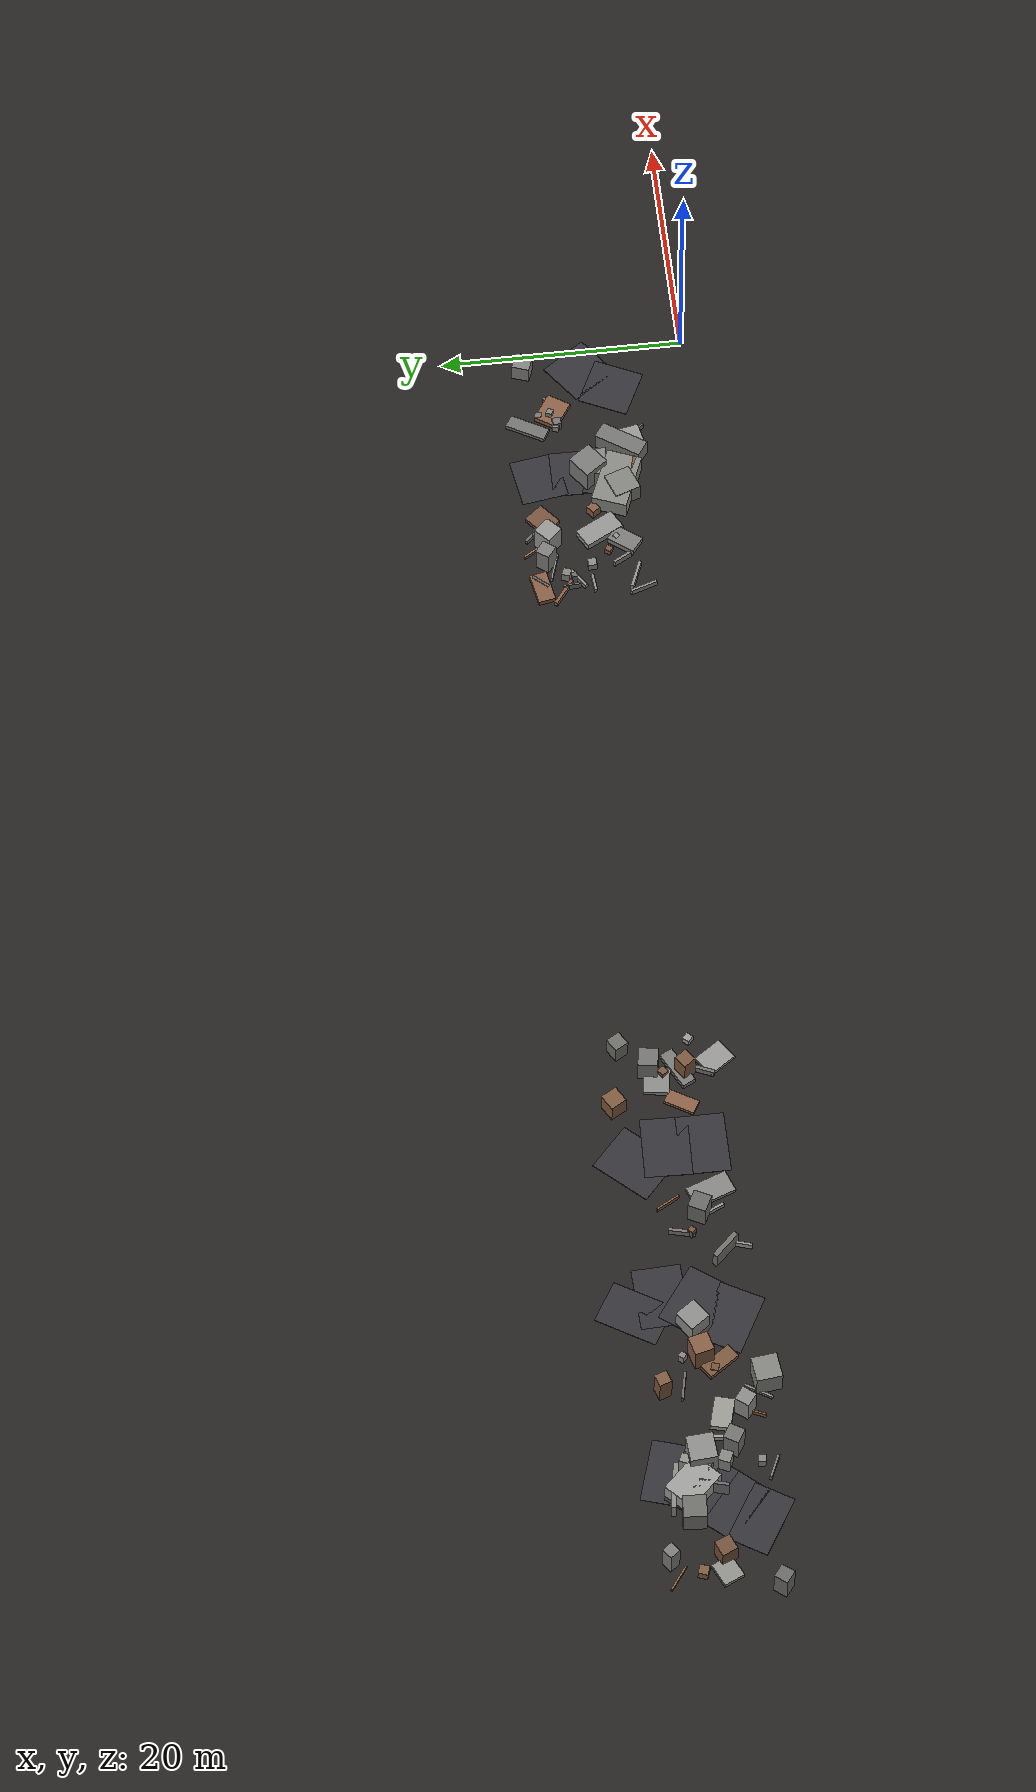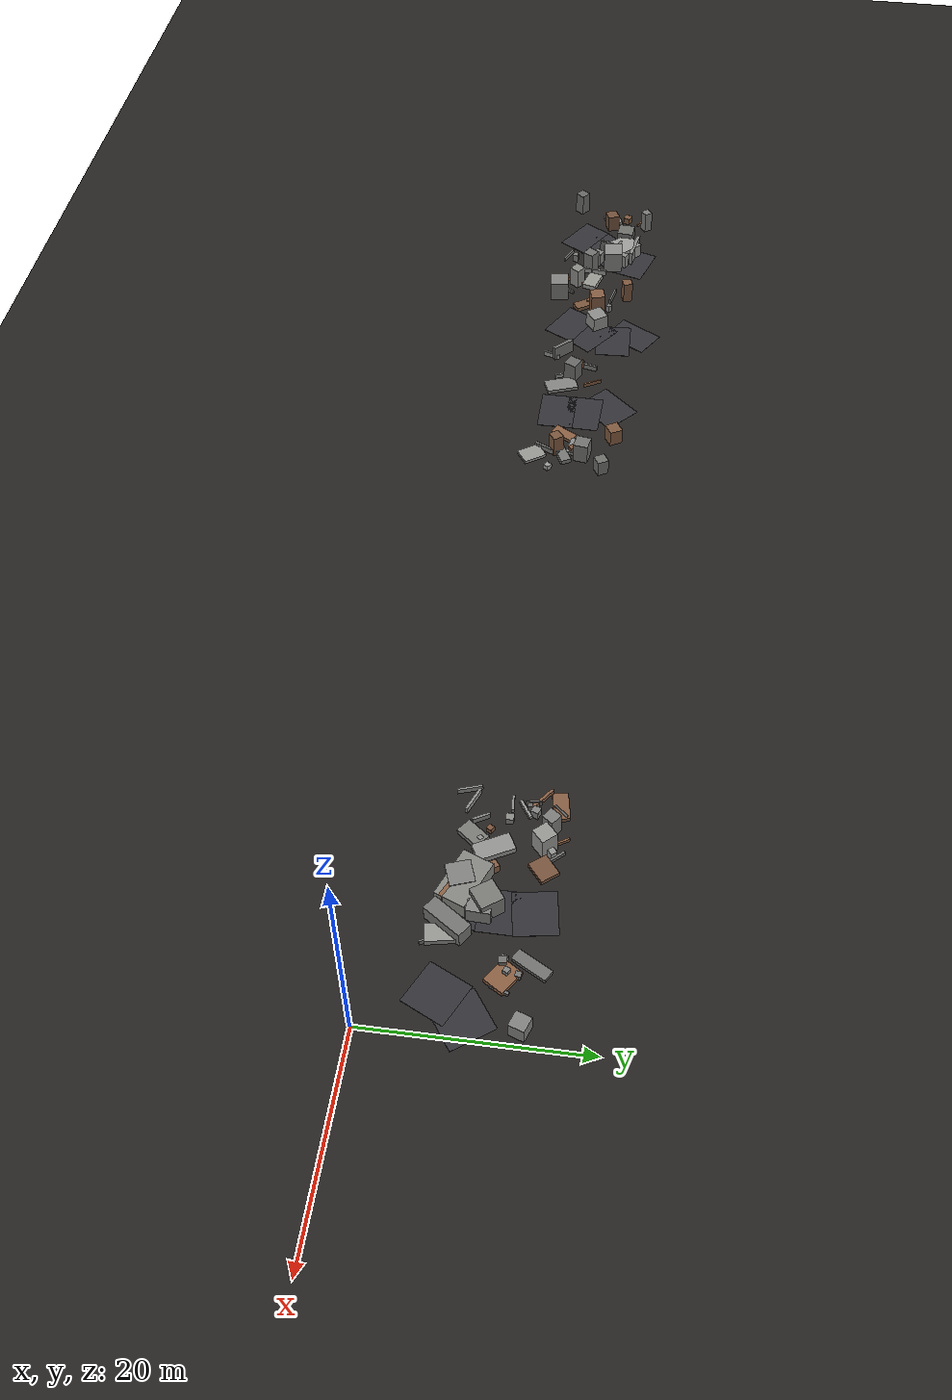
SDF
<sdf version="1.6">
 <world name="navitas_arena">
  <model name="ground_plane">
   <static>true</static>
   <link name="link">
    <collision name="collision">
     <geometry><plane><normal>0 0 1</normal><size>400 400</size></plane></geometry>
     <surface><friction><ode><mu>0.750</mu><mu2>0.750</mu2></ode></friction></surface>
    </collision>
    <visual name="visual">
     <cast_shadows>false</cast_shadows>
     <geometry><plane><normal>0 0 1</normal><size>400 400</size></plane></geometry>
     <material><ambient>0.150 0.140 0.130 1</ambient><diffuse>0.150 0.140 0.130 1</diffuse></material>
    </visual>
   </link>
  </model>
  <model name="road_kolay_1_14">
   <static>true</static>
   <pose>-107.877 7.036 0.040 0 0 1.019</pose>
   <link name="link">
    <collision name="col"><geometry><box><size>3.335 5.100 0.020</size></box></geometry></collision>
    <visual name="vis">
     <geometry><box><size>3.335 5.100 0.020</size></box></geometry>
     <material><ambient>0.20 0.20 0.22 1</ambient><diffuse>0.20 0.20 0.22 1</diffuse></material>
    </visual>
   </link>
  </model>
  <model name="road_kolay_1_15">
   <static>true</static>
   <pose>-106.329 9.124 0.040 0 0 0.858</pose>
   <link name="link">
    <collision name="col"><geometry><box><size>3.680 5.100 0.020</size></box></geometry></collision>
    <visual name="vis">
     <geometry><box><size>3.680 5.100 0.020</size></box></geometry>
     <material><ambient>0.20 0.20 0.22 1</ambient><diffuse>0.20 0.20 0.22 1</diffuse></material>
    </visual>
   </link>
  </model>
  <model name="road_kolay_1_16">
   <static>true</static>
   <pose>-104.605 11.153 0.040 0 0 0.876</pose>
   <link name="link">
    <collision name="col"><geometry><box><size>3.446 5.100 0.020</size></box></geometry></collision>
    <visual name="vis">
     <geometry><box><size>3.446 5.100 0.020</size></box></geometry>
     <material><ambient>0.20 0.20 0.22 1</ambient><diffuse>0.20 0.20 0.22 1</diffuse></material>
    </visual>
   </link>
  </model>
  <model name="road_kolay_1_17">
   <static>true</static>
   <pose>-103.387 13.427 0.040 0 0 1.270</pose>
   <link name="link">
    <collision name="col"><geometry><box><size>3.613 5.100 0.020</size></box></geometry></collision>
    <visual name="vis">
     <geometry><box><size>3.613 5.100 0.020</size></box></geometry>
     <material><ambient>0.20 0.20 0.22 1</ambient><diffuse>0.20 0.20 0.22 1</diffuse></material>
    </visual>
   </link>
  </model>
  <model name="road_kolay_2_10">
   <static>true</static>
   <pose>-90.799 7.213 0.040 0 0 1.069</pose>
   <link name="link">
    <collision name="col"><geometry><box><size>3.668 5.100 0.020</size></box></geometry></collision>
    <visual name="vis">
     <geometry><box><size>3.668 5.100 0.020</size></box></geometry>
     <material><ambient>0.20 0.20 0.22 1</ambient><diffuse>0.20 0.20 0.22 1</diffuse></material>
    </visual>
   </link>
  </model>
  <model name="road_kolay_2_11">
   <static>true</static>
   <pose>-89.248 9.639 0.040 0 0 0.940</pose>
   <link name="link">
    <collision name="col"><geometry><box><size>3.903 5.100 0.020</size></box></geometry></collision>
    <visual name="vis">
     <geometry><box><size>3.903 5.100 0.020</size></box></geometry>
     <material><ambient>0.20 0.20 0.22 1</ambient><diffuse>0.20 0.20 0.22 1</diffuse></material>
    </visual>
   </link>
  </model>
  <model name="road_kolay_2_12">
   <static>true</static>
   <pose>-88.425 12.317 0.040 0 0 1.613</pose>
   <link name="link">
    <collision name="col"><geometry><box><size>3.834 5.100 0.020</size></box></geometry></collision>
    <visual name="vis">
     <geometry><box><size>3.834 5.100 0.020</size></box></geometry>
     <material><ambient>0.20 0.20 0.22 1</ambient><diffuse>0.20 0.20 0.22 1</diffuse></material>
    </visual>
   </link>
  </model>
  <model name="road_kolay_2_13">
   <static>true</static>
   <pose>-89.631 14.469 0.040 0 0 2.601</pose>
   <link name="link">
    <collision name="col"><geometry><box><size>3.567 5.100 0.020</size></box></geometry></collision>
    <visual name="vis">
     <geometry><box><size>3.567 5.100 0.020</size></box></geometry>
     <material><ambient>0.20 0.20 0.22 1</ambient><diffuse>0.20 0.20 0.22 1</diffuse></material>
    </visual>
   </link>
  </model>
  <model name="road_kolay_3_14">
   <static>true</static>
   <pose>-75.554 7.460 0.040 0 0 1.570</pose>
   <link name="link">
    <collision name="col"><geometry><box><size>3.820 5.100 0.020</size></box></geometry></collision>
    <visual name="vis">
     <geometry><box><size>3.820 5.100 0.020</size></box></geometry>
     <material><ambient>0.20 0.20 0.22 1</ambient><diffuse>0.20 0.20 0.22 1</diffuse></material>
    </visual>
   </link>
  </model>
  <model name="road_kolay_3_15">
   <static>true</static>
   <pose>-75.510 10.340 0.040 0 0 1.541</pose>
   <link name="link">
    <collision name="col"><geometry><box><size>3.741 5.100 0.020</size></box></geometry></collision>
    <visual name="vis">
     <geometry><box><size>3.741 5.100 0.020</size></box></geometry>
     <material><ambient>0.20 0.20 0.22 1</ambient><diffuse>0.20 0.20 0.22 1</diffuse></material>
    </visual>
   </link>
  </model>
  <model name="road_kolay_3_16">
   <static>true</static>
   <pose>-76.684 12.872 0.040 0 0 2.401</pose>
   <link name="link">
    <collision name="col"><geometry><box><size>4.195 5.100 0.020</size></box></geometry></collision>
    <visual name="vis">
     <geometry><box><size>4.195 5.100 0.020</size></box></geometry>
     <material><ambient>0.20 0.20 0.22 1</ambient><diffuse>0.20 0.20 0.22 1</diffuse></material>
    </visual>
   </link>
  </model>
  <model name="blk_kolay_1_1_0">
   <static>true</static>
   <pose>-105.186 10.278 0.800 0 0 1.313</pose>
   <link name="link">
    <collision name="col"><geometry><box><size>2.316 0.255 1.600</size></box></geometry></collision>
    <visual name="vis">
     <geometry><box><size>2.316 0.255 1.600</size></box></geometry>
     <material><ambient>0.42 0.42 0.41 1</ambient><diffuse>0.42 0.42 0.41 1</diffuse></material>
    </visual>
   </link>
  </model>
  <model name="blk_kolay_1_1_1">
   <static>true</static>
   <pose>-102.954 12.226 0.800 0 0 1.133</pose>
   <link name="link">
    <collision name="col"><geometry><box><size>0.742 0.742 1.600</size></box></geometry></collision>
    <visual name="vis">
     <geometry><box><size>0.742 0.742 1.600</size></box></geometry>
     <material><ambient>0.56 0.56 0.55 1</ambient><diffuse>0.56 0.56 0.55 1</diffuse></material>
    </visual>
   </link>
  </model>
  <model name="blk_kolay_1_1_2">
   <static>true</static>
   <pose>-104.341 10.915 0.800 0 0 2.548</pose>
   <link name="link">
    <collision name="col"><geometry><box><size>2.898 0.374 1.600</size></box></geometry></collision>
    <visual name="vis">
     <geometry><box><size>2.898 0.374 1.600</size></box></geometry>
     <material><ambient>0.47 0.47 0.46 1</ambient><diffuse>0.47 0.47 0.46 1</diffuse></material>
    </visual>
   </link>
  </model>
  <model name="blk_kolay_1_1_3">
   <static>true</static>
   <pose>-102.600 10.930 1.268 0 0 0.081</pose>
   <link name="link">
    <collision name="col"><geometry><box><size>2.104 2.104 2.536</size></box></geometry></collision>
    <visual name="vis">
     <geometry><box><size>2.104 2.104 2.536</size></box></geometry>
     <material><ambient>0.55 0.55 0.54 1</ambient><diffuse>0.55 0.55 0.54 1</diffuse></material>
    </visual>
   </link>
  </model>
  <model name="blk_kolay_1_1_4">
   <static>true</static>
   <pose>-105.080 13.261 0.800 0 0 2.980</pose>
   <link name="link">
    <collision name="col"><geometry><box><size>3.709 0.389 1.600</size></box></geometry></collision>
    <visual name="vis">
     <geometry><box><size>3.709 0.389 1.600</size></box></geometry>
     <material><ambient>0.54 0.54 0.53 1</ambient><diffuse>0.54 0.54 0.53 1</diffuse></material>
    </visual>
   </link>
  </model>
  <model name="blk_kolay_1_1_5">
   <static>true</static>
   <pose>-104.911 11.835 0.800 0 0 2.343</pose>
   <link name="link">
    <collision name="col"><geometry><box><size>3.510 2.660 1.600</size></box></geometry></collision>
    <visual name="vis">
     <geometry><box><size>3.510 2.660 1.600</size></box></geometry>
     <material><ambient>0.62 0.62 0.61 1</ambient><diffuse>0.62 0.62 0.61 1</diffuse></material>
    </visual>
   </link>
  </model>
  <model name="blk_kolay_1_1_6">
   <static>true</static>
   <pose>-103.098 9.150 0.800 0 0 1.170</pose>
   <link name="link">
    <collision name="col"><geometry><box><size>0.963 0.963 1.600</size></box></geometry></collision>
    <visual name="vis">
     <geometry><box><size>0.963 0.963 1.600</size></box></geometry>
     <material><ambient>0.52 0.52 0.51 1</ambient><diffuse>0.52 0.52 0.51 1</diffuse></material>
    </visual>
   </link>
  </model>
  <model name="blk_kolay_1_1_7">
   <static>true</static>
   <pose>-107.246 12.018 1.077 0 0 3.065</pose>
   <link name="link">
    <collision name="col"><geometry><box><size>1.801 1.801 2.154</size></box></geometry></collision>
    <visual name="vis">
     <geometry><box><size>1.801 1.801 2.154</size></box></geometry>
     <material><ambient>0.43 0.43 0.42 1</ambient><diffuse>0.43 0.43 0.42 1</diffuse></material>
    </visual>
   </link>
  </model>
  <model name="deb_kolay_13">
   <static>true</static>
   <pose>-112.105 13.782 0.126 0 0 2.513</pose>
   <link name="link">
    <collision name="col"><geometry><box><size>2.224 0.155 0.252</size></box></geometry></collision>
    <visual name="vis">
     <geometry><box><size>2.224 0.155 0.252</size></box></geometry>
     <material><ambient>0.53 0.37 0.26 1</ambient><diffuse>0.53 0.37 0.26 1</diffuse></material>
    </visual>
   </link>
  </model>
  <model name="deb_kolay_14">
   <static>true</static>
   <pose>-94.575 8.540 0.229 0 0 2.175</pose>
   <link name="link">
    <collision name="col"><geometry><box><size>2.787 1.215 0.457</size></box></geometry></collision>
    <visual name="vis">
     <geometry><box><size>2.787 1.215 0.457</size></box></geometry>
     <material><ambient>0.48 0.34 0.24 1</ambient><diffuse>0.48 0.34 0.24 1</diffuse></material>
    </visual>
   </link>
  </model>
  <model name="deb_kolay_15">
   <static>true</static>
   <pose>-83.335 9.286 0.455 0 0 2.254</pose>
   <link name="link">
    <collision name="col"><geometry><box><size>0.468 0.468 0.910</size></box></geometry></collision>
    <visual name="vis">
     <geometry><box><size>0.468 0.468 0.910</size></box></geometry>
     <material><ambient>0.47 0.33 0.24 1</ambient><diffuse>0.47 0.33 0.24 1</diffuse></material>
    </visual>
   </link>
  </model>
  <model name="deb_kolay_24">
   <static>true</static>
   <pose>-98.846 6.921 0.208 0 0 1.157</pose>
   <link name="link">
    <collision name="col"><geometry><box><size>2.940 0.157 0.416</size></box></geometry></collision>
    <visual name="vis">
     <geometry><box><size>2.940 0.157 0.416</size></box></geometry>
     <material><ambient>0.52 0.36 0.26 1</ambient><diffuse>0.52 0.36 0.26 1</diffuse></material>
    </visual>
   </link>
  </model>
  <model name="deb_kolay_44">
   <static>true</static>
   <pose>-81.610 8.485 1.081 0 0 1.096</pose>
   <link name="link">
    <collision name="col"><geometry><box><size>1.454 1.454 2.162</size></box></geometry></collision>
    <visual name="vis">
     <geometry><box><size>1.454 1.454 2.162</size></box></geometry>
     <material><ambient>0.41 0.41 0.40 1</ambient><diffuse>0.41 0.41 0.40 1</diffuse></material>
    </visual>
   </link>
  </model>
  <model name="deb_kolay_49">
   <static>true</static>
   <pose>-113.675 6.070 1.239 0 0 2.495</pose>
   <link name="link">
    <collision name="col"><geometry><box><size>1.141 1.141 2.478</size></box></geometry></collision>
    <visual name="vis">
     <geometry><box><size>1.141 1.141 2.478</size></box></geometry>
     <material><ambient>0.41 0.41 0.40 1</ambient><diffuse>0.41 0.41 0.40 1</diffuse></material>
    </visual>
   </link>
  </model>
  <model name="deb_kolay_51">
   <static>true</static>
   <pose>-81.613 7.607 0.219 0 0 2.011</pose>
   <link name="link">
    <collision name="col"><geometry><box><size>2.330 0.213 0.439</size></box></geometry></collision>
    <visual name="vis">
     <geometry><box><size>2.330 0.213 0.439</size></box></geometry>
     <material><ambient>0.57 0.57 0.56 1</ambient><diffuse>0.57 0.57 0.56 1</diffuse></material>
    </visual>
   </link>
  </model>
  <model name="deb_kolay_53">
   <static>true</static>
   <pose>-95.059 8.944 0.269 0 0 2.835</pose>
   <link name="link">
    <collision name="col"><geometry><box><size>0.582 0.582 0.538</size></box></geometry></collision>
    <visual name="vis">
     <geometry><box><size>0.582 0.582 0.538</size></box></geometry>
     <material><ambient>0.46 0.32 0.23 1</ambient><diffuse>0.46 0.32 0.23 1</diffuse></material>
    </visual>
   </link>
  </model>
  <model name="deb_kolay_56">
   <static>true</static>
   <pose>-93.909 9.896 1.210 0 0 1.834</pose>
   <link name="link">
    <collision name="col"><geometry><box><size>1.555 1.555 2.421</size></box></geometry></collision>
    <visual name="vis">
     <geometry><box><size>1.555 1.555 2.421</size></box></geometry>
     <material><ambient>0.53 0.37 0.27 1</ambient><diffuse>0.53 0.37 0.27 1</diffuse></material>
    </visual>
   </link>
  </model>
  <model name="deb_kolay_58">
   <static>true</static>
   <pose>-68.575 10.930 1.090 0 0 1.396</pose>
   <link name="link">
    <collision name="col"><geometry><box><size>1.554 1.554 2.180</size></box></geometry></collision>
    <visual name="vis">
     <geometry><box><size>1.554 1.554 2.180</size></box></geometry>
     <material><ambient>0.45 0.45 0.44 1</ambient><diffuse>0.45 0.45 0.44 1</diffuse></material>
    </visual>
   </link>
  </model>
  <model name="deb_kolay_61">
   <static>true</static>
   <pose>-79.746 7.380 0.186 0 0 1.923</pose>
   <link name="link">
    <collision name="col"><geometry><box><size>3.425 1.838 0.372</size></box></geometry></collision>
    <visual name="vis">
     <geometry><box><size>3.425 1.838 0.372</size></box></geometry>
     <material><ambient>0.52 0.52 0.51 1</ambient><diffuse>0.52 0.52 0.51 1</diffuse></material>
    </visual>
   </link>
  </model>
  <model name="deb_kolay_62">
   <static>true</static>
   <pose>-69.167 9.823 0.394 0 0 2.201</pose>
   <link name="link">
    <collision name="col"><geometry><box><size>0.624 0.624 0.789</size></box></geometry></collision>
    <visual name="vis">
     <geometry><box><size>0.624 0.624 0.789</size></box></geometry>
     <material><ambient>0.49 0.34 0.25 1</ambient><diffuse>0.49 0.34 0.25 1</diffuse></material>
    </visual>
   </link>
  </model>
  <model name="deb_kolay_69">
   <static>true</static>
   <pose>-66.308 7.524 0.302 0 0 2.441</pose>
   <link name="link">
    <collision name="col"><geometry><box><size>0.602 0.602 0.604</size></box></geometry></collision>
    <visual name="vis">
     <geometry><box><size>0.602 0.602 0.604</size></box></geometry>
     <material><ambient>0.60 0.60 0.59 1</ambient><diffuse>0.60 0.60 0.59 1</diffuse></material>
    </visual>
   </link>
  </model>
  <model name="deb_kolay_74">
   <static>true</static>
   <pose>-80.530 10.797 0.211 0 0 2.076</pose>
   <link name="link">
    <collision name="col"><geometry><box><size>2.082 0.164 0.423</size></box></geometry></collision>
    <visual name="vis">
     <geometry><box><size>2.082 0.164 0.423</size></box></geometry>
     <material><ambient>0.49 0.34 0.24 1</ambient><diffuse>0.49 0.34 0.24 1</diffuse></material>
    </visual>
   </link>
  </model>
  <model name="deb_kolay_80">
   <static>true</static>
   <pose>-71.698 13.984 0.872 0 0 2.097</pose>
   <link name="link">
    <collision name="col"><geometry><box><size>1.388 1.388 1.744</size></box></geometry></collision>
    <visual name="vis">
     <geometry><box><size>1.388 1.388 1.744</size></box></geometry>
     <material><ambient>0.50 0.35 0.25 1</ambient><diffuse>0.50 0.35 0.25 1</diffuse></material>
    </visual>
   </link>
  </model>
  <model name="deb_kolay_84">
   <static>true</static>
   <pose>-101.732 8.354 1.234 0 0 2.609</pose>
   <link name="link">
    <collision name="col"><geometry><box><size>1.259 1.259 2.468</size></box></geometry></collision>
    <visual name="vis">
     <geometry><box><size>1.259 1.259 2.468</size></box></geometry>
     <material><ambient>0.44 0.44 0.43 1</ambient><diffuse>0.44 0.44 0.43 1</diffuse></material>
    </visual>
   </link>
  </model>
  <model name="deb_kolay_96">
   <static>true</static>
   <pose>-98.682 7.088 1.155 0 0 0.924</pose>
   <link name="link">
    <collision name="col"><geometry><box><size>1.209 1.209 2.310</size></box></geometry></collision>
    <visual name="vis">
     <geometry><box><size>1.209 1.209 2.310</size></box></geometry>
     <material><ambient>0.54 0.54 0.53 1</ambient><diffuse>0.54 0.54 0.53 1</diffuse></material>
    </visual>
   </link>
  </model>
  <model name="deb_kolay_107">
   <static>true</static>
   <pose>-111.890 11.874 0.398 0 0 1.220</pose>
   <link name="link">
    <collision name="col"><geometry><box><size>0.764 0.764 0.796</size></box></geometry></collision>
    <visual name="vis">
     <geometry><box><size>0.764 0.764 0.796</size></box></geometry>
     <material><ambient>0.49 0.35 0.25 1</ambient><diffuse>0.49 0.35 0.25 1</diffuse></material>
    </visual>
   </link>
  </model>
  <model name="deb_kolay_111">
   <static>true</static>
   <pose>-110.812 14.218 1.218 0 0 2.221</pose>
   <link name="link">
    <collision name="col"><geometry><box><size>0.917 0.917 2.437</size></box></geometry></collision>
    <visual name="vis">
     <geometry><box><size>0.917 0.917 2.437</size></box></geometry>
     <material><ambient>0.48 0.48 0.47 1</ambient><diffuse>0.48 0.48 0.47 1</diffuse></material>
    </visual>
   </link>
  </model>
  <model name="deb_kolay_113">
   <static>true</static>
   <pose>-96.537 13.127 1.202 0 0 1.905</pose>
   <link name="link">
    <collision name="col"><geometry><box><size>1.016 1.016 2.403</size></box></geometry></collision>
    <visual name="vis">
     <geometry><box><size>1.016 1.016 2.403</size></box></geometry>
     <material><ambient>0.50 0.35 0.25 1</ambient><diffuse>0.50 0.35 0.25 1</diffuse></material>
    </visual>
   </link>
  </model>
  <model name="deb_kolay_114">
   <static>true</static>
   <pose>-110.596 10.063 0.954 0 0 1.960</pose>
   <link name="link">
    <collision name="col"><geometry><box><size>1.318 1.318 1.908</size></box></geometry></collision>
    <visual name="vis">
     <geometry><box><size>1.318 1.318 1.908</size></box></geometry>
     <material><ambient>0.45 0.32 0.23 1</ambient><diffuse>0.45 0.32 0.23 1</diffuse></material>
    </visual>
   </link>
  </model>
  <model name="deb_kolay_115">
   <static>true</static>
   <pose>-69.108 8.091 1.157 0 0 0.643</pose>
   <link name="link">
    <collision name="col"><geometry><box><size>1.137 1.137 2.314</size></box></geometry></collision>
    <visual name="vis">
     <geometry><box><size>1.137 1.137 2.314</size></box></geometry>
     <material><ambient>0.48 0.34 0.24 1</ambient><diffuse>0.48 0.34 0.24 1</diffuse></material>
    </visual>
   </link>
  </model>
  <model name="deb_kolay_116">
   <static>true</static>
   <pose>-71.774 8.660 0.166 0 0 1.031</pose>
   <link name="link">
    <collision name="col"><geometry><box><size>2.548 1.172 0.332</size></box></geometry></collision>
    <visual name="vis">
     <geometry><box><size>2.548 1.172 0.332</size></box></geometry>
     <material><ambient>0.55 0.38 0.27 1</ambient><diffuse>0.55 0.38 0.27 1</diffuse></material>
    </visual>
   </link>
  </model>
  <model name="deb_kolay_122">
   <static>true</static>
   <pose>-68.180 5.614 0.162 0 0 2.175</pose>
   <link name="link">
    <collision name="col"><geometry><box><size>2.504 1.900 0.324</size></box></geometry></collision>
    <visual name="vis">
     <geometry><box><size>2.504 1.900 0.324</size></box></geometry>
     <material><ambient>0.59 0.59 0.58 1</ambient><diffuse>0.59 0.59 0.58 1</diffuse></material>
    </visual>
   </link>
  </model>
  <model name="deb_kolay_123">
   <static>true</static>
   <pose>-68.811 8.636 0.232 0 0 0.474</pose>
   <link name="link">
    <collision name="col"><geometry><box><size>3.285 1.125 0.465</size></box></geometry></collision>
    <visual name="vis">
     <geometry><box><size>3.285 1.125 0.465</size></box></geometry>
     <material><ambient>0.47 0.47 0.46 1</ambient><diffuse>0.47 0.47 0.46 1</diffuse></material>
    </visual>
   </link>
  </model>
  <model name="deb_kolay_127">
   <static>true</static>
   <pose>-69.735 10.386 0.201 0 0 2.979</pose>
   <link name="link">
    <collision name="col"><geometry><box><size>2.195 2.010 0.402</size></box></geometry></collision>
    <visual name="vis">
     <geometry><box><size>2.195 2.010 0.402</size></box></geometry>
     <material><ambient>0.54 0.54 0.53 1</ambient><diffuse>0.54 0.54 0.53 1</diffuse></material>
    </visual>
   </link>
  </model>
  <model name="deb_kolay_129">
   <static>true</static>
   <pose>-96.352 11.507 0.304 0 0 2.931</pose>
   <link name="link">
    <collision name="col"><geometry><box><size>2.234 0.216 0.608</size></box></geometry></collision>
    <visual name="vis">
     <geometry><box><size>2.234 0.216 0.608</size></box></geometry>
     <material><ambient>0.41 0.41 0.40 1</ambient><diffuse>0.41 0.41 0.40 1</diffuse></material>
    </visual>
   </link>
  </model>
  <model name="deb_kolay_136">
   <static>true</static>
   <pose>-100.966 8.913 0.304 0 0 1.464</pose>
   <link name="link">
    <collision name="col"><geometry><box><size>2.759 0.236 0.608</size></box></geometry></collision>
    <visual name="vis">
     <geometry><box><size>2.759 0.236 0.608</size></box></geometry>
     <material><ambient>0.61 0.61 0.60 1</ambient><diffuse>0.61 0.61 0.60 1</diffuse></material>
    </visual>
   </link>
  </model>
  <model name="deb_kolay_138">
   <static>true</static>
   <pose>-111.925 10.064 0.181 0 0 0.438</pose>
   <link name="link">
    <collision name="col"><geometry><box><size>1.930 1.717 0.362</size></box></geometry></collision>
    <visual name="vis">
     <geometry><box><size>1.930 1.717 0.362</size></box></geometry>
     <material><ambient>0.56 0.56 0.55 1</ambient><diffuse>0.56 0.56 0.55 1</diffuse></material>
    </visual>
   </link>
  </model>
  <model name="deb_kolay_148">
   <static>true</static>
   <pose>-103.277 6.386 0.444 0 0 2.962</pose>
   <link name="link">
    <collision name="col"><geometry><box><size>0.578 0.578 0.888</size></box></geometry></collision>
    <visual name="vis">
     <geometry><box><size>0.578 0.578 0.888</size></box></geometry>
     <material><ambient>0.51 0.51 0.50 1</ambient><diffuse>0.51 0.51 0.50 1</diffuse></material>
    </visual>
   </link>
  </model>
  <model name="deb_kolay_150">
   <static>true</static>
   <pose>-68.995 7.169 0.305 0 0 1.145</pose>
   <link name="link">
    <collision name="col"><geometry><box><size>2.922 0.279 0.609</size></box></geometry></collision>
    <visual name="vis">
     <geometry><box><size>2.922 0.279 0.609</size></box></geometry>
     <material><ambient>0.46 0.46 0.45 1</ambient><diffuse>0.46 0.46 0.45 1</diffuse></material>
    </visual>
   </link>
  </model>
  <model name="deb_kolay_154">
   <static>true</static>
   <pose>-84.718 5.737 0.288 0 0 1.267</pose>
   <link name="link">
    <collision name="col"><geometry><box><size>1.921 0.199 0.575</size></box></geometry></collision>
    <visual name="vis">
     <geometry><box><size>1.921 0.199 0.575</size></box></geometry>
     <material><ambient>0.59 0.59 0.58 1</ambient><diffuse>0.59 0.59 0.58 1</diffuse></material>
    </visual>
   </link>
  </model>
  <model name="deb_kolay_166">
   <static>true</static>
   <pose>-98.966 8.864 0.279 0 0 2.876</pose>
   <link name="link">
    <collision name="col"><geometry><box><size>2.528 1.570 0.558</size></box></geometry></collision>
    <visual name="vis">
     <geometry><box><size>2.528 1.570 0.558</size></box></geometry>
     <material><ambient>0.60 0.60 0.58 1</ambient><diffuse>0.60 0.60 0.58 1</diffuse></material>
    </visual>
   </link>
  </model>
  <model name="deb_kolay_167">
   <static>true</static>
   <pose>-103.812 5.503 0.243 0 0 2.714</pose>
   <link name="link">
    <collision name="col"><geometry><box><size>1.992 0.192 0.487</size></box></geometry></collision>
    <visual name="vis">
     <geometry><box><size>1.992 0.192 0.487</size></box></geometry>
     <material><ambient>0.46 0.46 0.45 1</ambient><diffuse>0.46 0.46 0.45 1</diffuse></material>
    </visual>
   </link>
  </model>
  <model name="deb_kolay_175">
   <static>true</static>
   <pose>-83.200 10.045 0.301 0 0 1.336</pose>
   <link name="link">
    <collision name="col"><geometry><box><size>2.059 0.261 0.602</size></box></geometry></collision>
    <visual name="vis">
     <geometry><box><size>2.059 0.261 0.602</size></box></geometry>
     <material><ambient>0.46 0.46 0.45 1</ambient><diffuse>0.46 0.46 0.45 1</diffuse></material>
    </visual>
   </link>
  </model>
  <model name="deb_kolay_178">
   <static>true</static>
   <pose>-93.941 11.298 0.416 0 0 0.827</pose>
   <link name="link">
    <collision name="col"><geometry><box><size>0.486 0.486 0.833</size></box></geometry></collision>
    <visual name="vis">
     <geometry><box><size>0.486 0.486 0.833</size></box></geometry>
     <material><ambient>0.52 0.52 0.51 1</ambient><diffuse>0.52 0.52 0.51 1</diffuse></material>
    </visual>
   </link>
  </model>
  <model name="deb_kolay_189">
   <static>true</static>
   <pose>-97.324 5.873 0.148 0 0 1.016</pose>
   <link name="link">
    <collision name="col"><geometry><box><size>2.377 0.207 0.297</size></box></geometry></collision>
    <visual name="vis">
     <geometry><box><size>2.377 0.207 0.297</size></box></geometry>
     <material><ambient>0.52 0.52 0.51 1</ambient><diffuse>0.52 0.52 0.51 1</diffuse></material>
    </visual>
   </link>
  </model>
  <model name="deb_kolay_193">
   <static>true</static>
   <pose>-66.699 13.128 0.860 0 0 2.108</pose>
   <link name="link">
    <collision name="col"><geometry><box><size>1.188 1.188 1.719</size></box></geometry></collision>
    <visual name="vis">
     <geometry><box><size>1.188 1.188 1.719</size></box></geometry>
     <material><ambient>0.43 0.43 0.42 1</ambient><diffuse>0.43 0.43 0.42 1</diffuse></material>
    </visual>
   </link>
  </model>
  <model name="chic_kolay_4">
   <static>true</static>
   <pose>-96.348 5.194 1.088 0 0 0.116</pose>
   <link name="link">
    <collision name="col"><geometry><box><size>2.026 2.026 2.177</size></box></geometry></collision>
    <visual name="vis">
     <geometry><box><size>2.026 2.026 2.177</size></box></geometry>
     <material><ambient>0.51 0.51 0.50 1</ambient><diffuse>0.51 0.51 0.50 1</diffuse></material>
    </visual>
   </link>
  </model>
  <model name="chic_kolay_5">
   <static>true</static>
   <pose>-85.272 6.931 0.800 0 0 2.338</pose>
   <link name="link">
    <collision name="col"><geometry><box><size>2.575 0.415 1.600</size></box></geometry></collision>
    <visual name="vis">
     <geometry><box><size>2.575 0.415 1.600</size></box></geometry>
     <material><ambient>0.43 0.43 0.42 1</ambient><diffuse>0.43 0.43 0.42 1</diffuse></material>
    </visual>
   </link>
  </model>
  <model name="chic_kolay_6">
   <static>true</static>
   <pose>-91.061 10.176 0.864 0 0 2.186</pose>
   <link name="link">
    <collision name="col"><geometry><box><size>1.822 1.822 1.728</size></box></geometry></collision>
    <visual name="vis">
     <geometry><box><size>1.822 1.822 1.728</size></box></geometry>
     <material><ambient>0.55 0.55 0.54 1</ambient><diffuse>0.55 0.55 0.54 1</diffuse></material>
    </visual>
   </link>
  </model>
  <model name="road_orta_1_18">
   <static>true</static>
   <pose>-12.270 7.460 0.040 0 0 1.352</pose>
   <link name="link">
    <collision name="col"><geometry><box><size>3.891 4.250 0.020</size></box></geometry></collision>
    <visual name="vis">
     <geometry><box><size>3.891 4.250 0.020</size></box></geometry>
     <material><ambient>0.20 0.20 0.22 1</ambient><diffuse>0.20 0.20 0.22 1</diffuse></material>
    </visual>
   </link>
  </model>
  <model name="road_orta_1_19">
   <static>true</static>
   <pose>-11.937 10.340 0.040 0 0 1.565</pose>
   <link name="link">
    <collision name="col"><geometry><box><size>3.740 4.250 0.020</size></box></geometry></collision>
    <visual name="vis">
     <geometry><box><size>3.740 4.250 0.020</size></box></geometry>
     <material><ambient>0.20 0.20 0.22 1</ambient><diffuse>0.20 0.20 0.22 1</diffuse></material>
    </visual>
   </link>
  </model>
  <model name="road_orta_1_20">
   <static>true</static>
   <pose>-12.162 13.241 0.040 0 0 1.728</pose>
   <link name="link">
    <collision name="col"><geometry><box><size>3.899 4.250 0.020</size></box></geometry></collision>
    <visual name="vis">
     <geometry><box><size>3.899 4.250 0.020</size></box></geometry>
     <material><ambient>0.20 0.20 0.22 1</ambient><diffuse>0.20 0.20 0.22 1</diffuse></material>
    </visual>
   </link>
  </model>
  <model name="road_orta_2_12">
   <static>true</static>
   <pose>-3.737 6.321 0.040 0 0 1.123</pose>
   <link name="link">
    <collision name="col"><geometry><box><size>4.200 4.250 0.020</size></box></geometry></collision>
    <visual name="vis">
     <geometry><box><size>4.200 4.250 0.020</size></box></geometry>
     <material><ambient>0.20 0.20 0.22 1</ambient><diffuse>0.20 0.20 0.22 1</diffuse></material>
    </visual>
   </link>
  </model>
  <model name="road_orta_2_13">
   <static>true</static>
   <pose>-1.736 8.732 0.040 0 0 0.623</pose>
   <link name="link">
    <collision name="col"><geometry><box><size>4.069 4.250 0.020</size></box></geometry></collision>
    <visual name="vis">
     <geometry><box><size>4.069 4.250 0.020</size></box></geometry>
     <material><ambient>0.20 0.20 0.22 1</ambient><diffuse>0.20 0.20 0.22 1</diffuse></material>
    </visual>
   </link>
  </model>
  <model name="blk_orta_1_2_0">
   <static>true</static>
   <pose>-10.029 6.190 0.800 0 0 0.971</pose>
   <link name="link">
    <collision name="col"><geometry><box><size>4.072 1.485 1.600</size></box></geometry></collision>
    <visual name="vis">
     <geometry><box><size>4.072 1.485 1.600</size></box></geometry>
     <material><ambient>0.46 0.46 0.45 1</ambient><diffuse>0.46 0.46 0.45 1</diffuse></material>
    </visual>
   </link>
  </model>
  <model name="blk_orta_1_2_1">
   <static>true</static>
   <pose>-12.877 5.772 0.800 0 0 2.706</pose>
   <link name="link">
    <collision name="col"><geometry><box><size>2.246 0.358 1.600</size></box></geometry></collision>
    <visual name="vis">
     <geometry><box><size>2.246 0.358 1.600</size></box></geometry>
     <material><ambient>0.54 0.38 0.27 1</ambient><diffuse>0.54 0.38 0.27 1</diffuse></material>
    </visual>
   </link>
  </model>
  <model name="blk_orta_1_2_2">
   <static>true</static>
   <pose>-14.282 6.585 0.839 0 0 0.350</pose>
   <link name="link">
    <collision name="col"><geometry><box><size>2.232 2.232 1.677</size></box></geometry></collision>
    <visual name="vis">
     <geometry><box><size>2.232 2.232 1.677</size></box></geometry>
     <material><ambient>0.51 0.51 0.50 1</ambient><diffuse>0.51 0.51 0.50 1</diffuse></material>
    </visual>
   </link>
  </model>
  <model name="blk_orta_1_2_3">
   <static>true</static>
   <pose>-12.210 9.180 1.094 0 0 0.632</pose>
   <link name="link">
    <collision name="col"><geometry><box><size>2.191 2.191 2.188</size></box></geometry></collision>
    <visual name="vis">
     <geometry><box><size>2.191 2.191 2.188</size></box></geometry>
     <material><ambient>0.48 0.48 0.47 1</ambient><diffuse>0.48 0.48 0.47 1</diffuse></material>
    </visual>
   </link>
  </model>
  <model name="blk_orta_1_2_4">
   <static>true</static>
   <pose>-11.975 8.691 0.800 0 0 3.094</pose>
   <link name="link">
    <collision name="col"><geometry><box><size>2.535 2.123 1.600</size></box></geometry></collision>
    <visual name="vis">
     <geometry><box><size>2.535 2.123 1.600</size></box></geometry>
     <material><ambient>0.52 0.52 0.51 1</ambient><diffuse>0.52 0.52 0.51 1</diffuse></material>
    </visual>
   </link>
  </model>
  <model name="blk_orta_1_2_5">
   <static>true</static>
   <pose>-13.823 6.991 0.800 0 0 2.759</pose>
   <link name="link">
    <collision name="col"><geometry><box><size>4.916 2.947 1.600</size></box></geometry></collision>
    <visual name="vis">
     <geometry><box><size>4.916 2.947 1.600</size></box></geometry>
     <material><ambient>0.53 0.53 0.51 1</ambient><diffuse>0.53 0.53 0.51 1</diffuse></material>
    </visual>
   </link>
  </model>
  <model name="deb_orta_0">
   <static>true</static>
   <pose>-23.897 5.934 0.262 0 0 1.899</pose>
   <link name="link">
    <collision name="col"><geometry><box><size>2.258 0.210 0.525</size></box></geometry></collision>
    <visual name="vis">
     <geometry><box><size>2.258 0.210 0.525</size></box></geometry>
     <material><ambient>0.56 0.56 0.55 1</ambient><diffuse>0.56 0.56 0.55 1</diffuse></material>
    </visual>
   </link>
  </model>
  <model name="deb_orta_18">
   <static>true</static>
   <pose>-21.128 12.942 0.213 0 0 2.842</pose>
   <link name="link">
    <collision name="col"><geometry><box><size>2.436 0.160 0.426</size></box></geometry></collision>
    <visual name="vis">
     <geometry><box><size>2.436 0.160 0.426</size></box></geometry>
     <material><ambient>0.55 0.55 0.54 1</ambient><diffuse>0.55 0.55 0.54 1</diffuse></material>
    </visual>
   </link>
  </model>
  <model name="deb_orta_49">
   <static>true</static>
   <pose>-20.621 13.588 1.129 0 0 2.513</pose>
   <link name="link">
    <collision name="col"><geometry><box><size>1.194 1.194 2.257</size></box></geometry></collision>
    <visual name="vis">
     <geometry><box><size>1.194 1.194 2.257</size></box></geometry>
     <material><ambient>0.49 0.49 0.48 1</ambient><diffuse>0.49 0.49 0.48 1</diffuse></material>
    </visual>
   </link>
  </model>
  <model name="deb_orta_52">
   <static>true</static>
   <pose>-19.148 6.928 0.267 0 0 0.912</pose>
   <link name="link">
    <collision name="col"><geometry><box><size>2.445 1.516 0.534</size></box></geometry></collision>
    <visual name="vis">
     <geometry><box><size>2.445 1.516 0.534</size></box></geometry>
     <material><ambient>0.48 0.48 0.47 1</ambient><diffuse>0.48 0.48 0.47 1</diffuse></material>
    </visual>
   </link>
  </model>
  <model name="deb_orta_54">
   <static>true</static>
   <pose>-17.728 14.255 0.184 0 0 2.315</pose>
   <link name="link">
    <collision name="col"><geometry><box><size>1.967 0.247 0.368</size></box></geometry></collision>
    <visual name="vis">
     <geometry><box><size>1.967 0.247 0.368</size></box></geometry>
     <material><ambient>0.42 0.42 0.41 1</ambient><diffuse>0.42 0.42 0.41 1</diffuse></material>
    </visual>
   </link>
  </model>
  <model name="deb_orta_59">
   <static>true</static>
   <pose>-22.073 12.054 0.432 0 0 1.210</pose>
   <link name="link">
    <collision name="col"><geometry><box><size>0.692 0.692 0.863</size></box></geometry></collision>
    <visual name="vis">
     <geometry><box><size>0.692 0.692 0.863</size></box></geometry>
     <material><ambient>0.51 0.51 0.50 1</ambient><diffuse>0.51 0.51 0.50 1</diffuse></material>
    </visual>
   </link>
  </model>
  <model name="deb_orta_61">
   <static>true</static>
   <pose>-18.780 7.614 0.275 0 0 2.264</pose>
   <link name="link">
    <collision name="col"><geometry><box><size>0.435 0.435 0.550</size></box></geometry></collision>
    <visual name="vis">
     <geometry><box><size>0.435 0.435 0.550</size></box></geometry>
     <material><ambient>0.56 0.56 0.55 1</ambient><diffuse>0.56 0.56 0.55 1</diffuse></material>
    </visual>
   </link>
  </model>
  <model name="deb_orta_80">
   <static>true</static>
   <pose>-16.463 13.424 0.198 0 0 2.259</pose>
   <link name="link">
    <collision name="col"><geometry><box><size>1.827 2.161 0.397</size></box></geometry></collision>
    <visual name="vis">
     <geometry><box><size>1.827 2.161 0.397</size></box></geometry>
     <material><ambient>0.47 0.33 0.24 1</ambient><diffuse>0.47 0.33 0.24 1</diffuse></material>
    </visual>
   </link>
  </model>
  <model name="deb_orta_82">
   <static>true</static>
   <pose>-6.151 11.689 0.456 0 0 1.111</pose>
   <link name="link">
    <collision name="col"><geometry><box><size>0.502 0.502 0.913</size></box></geometry></collision>
    <visual name="vis">
     <geometry><box><size>0.502 0.502 0.913</size></box></geometry>
     <material><ambient>0.51 0.51 0.50 1</ambient><diffuse>0.51 0.51 0.50 1</diffuse></material>
    </visual>
   </link>
  </model>
  <model name="deb_orta_88">
   <static>true</static>
   <pose>-5.815 11.425 0.229 0 0 2.570</pose>
   <link name="link">
    <collision name="col"><geometry><box><size>2.548 2.031 0.458</size></box></geometry></collision>
    <visual name="vis">
     <geometry><box><size>2.548 2.031 0.458</size></box></geometry>
     <material><ambient>0.55 0.38 0.27 1</ambient><diffuse>0.55 0.38 0.27 1</diffuse></material>
    </visual>
   </link>
  </model>
  <model name="deb_orta_114">
   <static>true</static>
   <pose>-23.157 11.720 0.300 0 0 1.643</pose>
   <link name="link">
    <collision name="col"><geometry><box><size>1.512 0.153 0.601</size></box></geometry></collision>
    <visual name="vis">
     <geometry><box><size>1.512 0.153 0.601</size></box></geometry>
     <material><ambient>0.42 0.42 0.41 1</ambient><diffuse>0.42 0.42 0.41 1</diffuse></material>
    </visual>
   </link>
  </model>
  <model name="deb_orta_115">
   <static>true</static>
   <pose>-22.498 14.205 0.229 0 0 0.846</pose>
   <link name="link">
    <collision name="col"><geometry><box><size>1.620 0.231 0.457</size></box></geometry></collision>
    <visual name="vis">
     <geometry><box><size>1.620 0.231 0.457</size></box></geometry>
     <material><ambient>0.40 0.40 0.39 1</ambient><diffuse>0.40 0.40 0.39 1</diffuse></material>
    </visual>
   </link>
  </model>
  <model name="deb_orta_120">
   <static>true</static>
   <pose>-22.669 6.421 0.305 0 0 2.762</pose>
   <link name="link">
    <collision name="col"><geometry><box><size>2.477 0.256 0.611</size></box></geometry></collision>
    <visual name="vis">
     <geometry><box><size>2.477 0.256 0.611</size></box></geometry>
     <material><ambient>0.56 0.56 0.55 1</ambient><diffuse>0.56 0.56 0.55 1</diffuse></material>
    </visual>
   </link>
  </model>
  <model name="deb_orta_122">
   <static>true</static>
   <pose>-8.735 5.407 0.245 0 0 2.082</pose>
   <link name="link">
    <collision name="col"><geometry><box><size>2.920 0.166 0.490</size></box></geometry></collision>
    <visual name="vis">
     <geometry><box><size>2.920 0.166 0.490</size></box></geometry>
     <material><ambient>0.44 0.44 0.43 1</ambient><diffuse>0.44 0.44 0.43 1</diffuse></material>
    </visual>
   </link>
  </model>
  <model name="deb_orta_127">
   <static>true</static>
   <pose>-21.194 9.860 0.335 0 0 0.041</pose>
   <link name="link">
    <collision name="col"><geometry><box><size>0.700 0.700 0.670</size></box></geometry></collision>
    <visual name="vis">
     <geometry><box><size>0.700 0.700 0.670</size></box></geometry>
     <material><ambient>0.54 0.54 0.53 1</ambient><diffuse>0.54 0.54 0.53 1</diffuse></material>
    </visual>
   </link>
  </model>
  <model name="deb_orta_130">
   <static>true</static>
   <pose>-23.045 14.142 0.215 0 0 0.185</pose>
   <link name="link">
    <collision name="col"><geometry><box><size>2.719 1.424 0.429</size></box></geometry></collision>
    <visual name="vis">
     <geometry><box><size>2.719 1.424 0.429</size></box></geometry>
     <material><ambient>0.53 0.37 0.27 1</ambient><diffuse>0.53 0.37 0.27 1</diffuse></material>
    </visual>
   </link>
  </model>
  <model name="deb_orta_131">
   <static>true</static>
   <pose>-17.948 13.960 0.473 0 0 2.225</pose>
   <link name="link">
    <collision name="col"><geometry><box><size>0.598 0.598 0.945</size></box></geometry></collision>
    <visual name="vis">
     <geometry><box><size>0.598 0.598 0.945</size></box></geometry>
     <material><ambient>0.58 0.58 0.57 1</ambient><diffuse>0.58 0.58 0.57 1</diffuse></material>
    </visual>
   </link>
  </model>
  <model name="deb_orta_135">
   <static>true</static>
   <pose>-4.662 11.279 0.159 0 0 1.241</pose>
   <link name="link">
    <collision name="col"><geometry><box><size>1.732 0.246 0.319</size></box></geometry></collision>
    <visual name="vis">
     <geometry><box><size>1.732 0.246 0.319</size></box></geometry>
     <material><ambient>0.46 0.46 0.45 1</ambient><diffuse>0.46 0.46 0.45 1</diffuse></material>
    </visual>
   </link>
  </model>
  <model name="deb_orta_144">
   <static>true</static>
   <pose>-19.933 8.342 0.258 0 0 2.584</pose>
   <link name="link">
    <collision name="col"><geometry><box><size>0.524 0.524 0.517</size></box></geometry></collision>
    <visual name="vis">
     <geometry><box><size>0.524 0.524 0.517</size></box></geometry>
     <material><ambient>0.48 0.33 0.24 1</ambient><diffuse>0.48 0.33 0.24 1</diffuse></material>
    </visual>
   </link>
  </model>
  <model name="deb_orta_158">
   <static>true</static>
   <pose>-7.359 11.313 0.326 0 0 2.954</pose>
   <link name="link">
    <collision name="col"><geometry><box><size>0.539 0.539 0.651</size></box></geometry></collision>
    <visual name="vis">
     <geometry><box><size>0.539 0.539 0.651</size></box></geometry>
     <material><ambient>0.59 0.59 0.57 1</ambient><diffuse>0.59 0.59 0.57 1</diffuse></material>
    </visual>
   </link>
  </model>
  <model name="deb_orta_179">
   <static>true</static>
   <pose>-18.800 13.196 1.171 0 0 0.744</pose>
   <link name="link">
    <collision name="col"><geometry><box><size>1.565 1.565 2.343</size></box></geometry></collision>
    <visual name="vis">
     <geometry><box><size>1.565 1.565 2.343</size></box></geometry>
     <material><ambient>0.59 0.59 0.58 1</ambient><diffuse>0.59 0.59 0.58 1</diffuse></material>
    </visual>
   </link>
  </model>
  <model name="deb_orta_182">
   <static>true</static>
   <pose>-20.946 7.358 0.297 0 0 2.077</pose>
   <link name="link">
    <collision name="col"><geometry><box><size>1.640 0.235 0.593</size></box></geometry></collision>
    <visual name="vis">
     <geometry><box><size>1.640 0.235 0.593</size></box></geometry>
     <material><ambient>0.51 0.51 0.50 1</ambient><diffuse>0.51 0.51 0.50 1</diffuse></material>
    </visual>
   </link>
  </model>
  <model name="deb_orta_191">
   <static>true</static>
   <pose>-22.941 9.898 0.172 0 0 0.088</pose>
   <link name="link">
    <collision name="col"><geometry><box><size>1.598 0.241 0.343</size></box></geometry></collision>
    <visual name="vis">
     <geometry><box><size>1.598 0.241 0.343</size></box></geometry>
     <material><ambient>0.55 0.55 0.54 1</ambient><diffuse>0.55 0.55 0.54 1</diffuse></material>
    </visual>
   </link>
  </model>
  <model name="deb_orta_204">
   <static>true</static>
   <pose>-19.354 14.436 0.150 0 0 2.124</pose>
   <link name="link">
    <collision name="col"><geometry><box><size>1.929 0.197 0.299</size></box></geometry></collision>
    <visual name="vis">
     <geometry><box><size>1.929 0.197 0.299</size></box></geometry>
     <material><ambient>0.53 0.37 0.26 1</ambient><diffuse>0.53 0.37 0.26 1</diffuse></material>
    </visual>
   </link>
  </model>
  <model name="deb_orta_207">
   <static>true</static>
   <pose>-17.968 8.894 0.297 0 0 2.069</pose>
   <link name="link">
    <collision name="col"><geometry><box><size>3.494 1.727 0.594</size></box></geometry></collision>
    <visual name="vis">
     <geometry><box><size>3.494 1.727 0.594</size></box></geometry>
     <material><ambient>0.58 0.58 0.57 1</ambient><diffuse>0.58 0.58 0.57 1</diffuse></material>
    </visual>
   </link>
  </model>
  <model name="deb_orta_211">
   <static>true</static>
   <pose>-9.128 5.755 0.273 0 0 1.768</pose>
   <link name="link">
    <collision name="col"><geometry><box><size>2.750 1.744 0.547</size></box></geometry></collision>
    <visual name="vis">
     <geometry><box><size>2.750 1.744 0.547</size></box></geometry>
     <material><ambient>0.59 0.59 0.58 1</ambient><diffuse>0.59 0.59 0.58 1</diffuse></material>
    </visual>
   </link>
  </model>
  <model name="deb_orta_214">
   <static>true</static>
   <pose>-7.100 11.204 0.413 0 0 0.100</pose>
   <link name="link">
    <collision name="col"><geometry><box><size>0.661 0.661 0.826</size></box></geometry></collision>
    <visual name="vis">
     <geometry><box><size>0.661 0.661 0.826</size></box></geometry>
     <material><ambient>0.45 0.45 0.44 1</ambient><diffuse>0.45 0.45 0.44 1</diffuse></material>
    </visual>
   </link>
  </model>
  <model name="deb_orta_215">
   <static>true</static>
   <pose>-22.424 11.094 0.196 0 0 0.590</pose>
   <link name="link">
    <collision name="col"><geometry><box><size>1.954 0.276 0.392</size></box></geometry></collision>
    <visual name="vis">
     <geometry><box><size>1.954 0.276 0.392</size></box></geometry>
     <material><ambient>0.59 0.59 0.58 1</ambient><diffuse>0.59 0.59 0.58 1</diffuse></material>
    </visual>
   </link>
  </model>
  <model name="deb_orta_220">
   <static>true</static>
   <pose>-6.105 12.646 0.263 0 0 2.970</pose>
   <link name="link">
    <collision name="col"><geometry><box><size>0.511 0.511 0.525</size></box></geometry></collision>
    <visual name="vis">
     <geometry><box><size>0.511 0.511 0.525</size></box></geometry>
     <material><ambient>0.46 0.46 0.45 1</ambient><diffuse>0.46 0.46 0.45 1</diffuse></material>
    </visual>
   </link>
  </model>
  <model name="deb_orta_226">
   <static>true</static>
   <pose>-22.451 11.474 0.477 0 0 0.140</pose>
   <link name="link">
    <collision name="col"><geometry><box><size>0.441 0.441 0.955</size></box></geometry></collision>
    <visual name="vis">
     <geometry><box><size>0.441 0.441 0.955</size></box></geometry>
     <material><ambient>0.42 0.42 0.41 1</ambient><diffuse>0.42 0.42 0.41 1</diffuse></material>
    </visual>
   </link>
  </model>
  <model name="deb_orta_237">
   <static>true</static>
   <pose>-23.519 12.343 0.222 0 0 2.507</pose>
   <link name="link">
    <collision name="col"><geometry><box><size>2.927 0.270 0.444</size></box></geometry></collision>
    <visual name="vis">
     <geometry><box><size>2.927 0.270 0.444</size></box></geometry>
     <material><ambient>0.53 0.37 0.27 1</ambient><diffuse>0.53 0.37 0.27 1</diffuse></material>
    </visual>
   </link>
  </model>
  <model name="deb_orta_242">
   <static>true</static>
   <pose>-7.184 13.638 0.183 0 0 1.054</pose>
   <link name="link">
    <collision name="col"><geometry><box><size>3.428 1.124 0.366</size></box></geometry></collision>
    <visual name="vis">
     <geometry><box><size>3.428 1.124 0.366</size></box></geometry>
     <material><ambient>0.45 0.45 0.44 1</ambient><diffuse>0.45 0.45 0.44 1</diffuse></material>
    </visual>
   </link>
  </model>
  <model name="deb_orta_254">
   <static>true</static>
   <pose>-16.001 9.164 0.429 0 0 2.207</pose>
   <link name="link">
    <collision name="col"><geometry><box><size>0.789 0.789 0.857</size></box></geometry></collision>
    <visual name="vis">
     <geometry><box><size>0.789 0.789 0.857</size></box></geometry>
     <material><ambient>0.53 0.37 0.27 1</ambient><diffuse>0.53 0.37 0.27 1</diffuse></material>
    </visual>
   </link>
  </model>
  <model name="chic_orta_6">
   <static>true</static>
   <pose>-1.382 13.436 0.800 0 0 2.800</pose>
   <link name="link">
    <collision name="col"><geometry><box><size>1.454 1.454 1.600</size></box></geometry></collision>
    <visual name="vis">
     <geometry><box><size>1.454 1.454 1.600</size></box></geometry>
     <material><ambient>0.51 0.51 0.50 1</ambient><diffuse>0.51 0.51 0.50 1</diffuse></material>
    </visual>
   </link>
  </model>
 </world>
</sdf>
